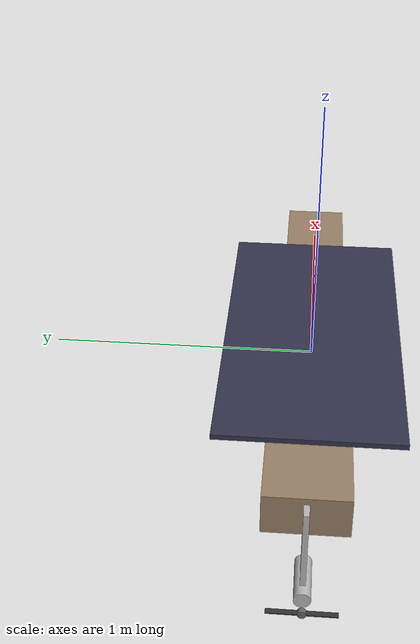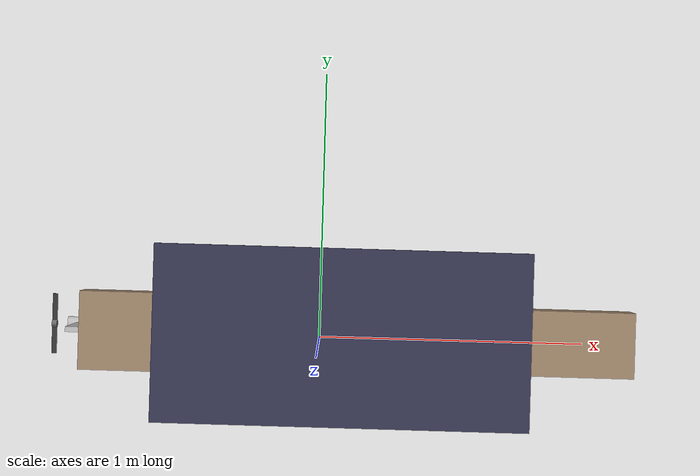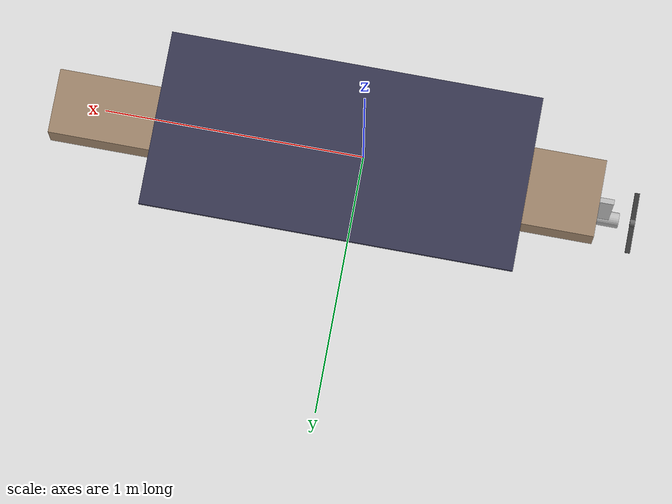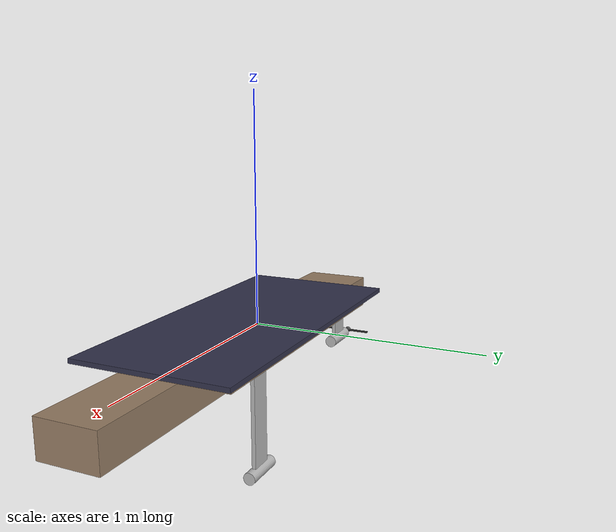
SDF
<?xml version="1.0" encoding="UTF-8"?>
<sdf version='1.9'>
  <model name='warden_vectorthrust'>
    <link name='base_link'>
      <pose relative_to='__model__'>0 0 0.0 0 0 0</pose>
      <inertial>
        <pose>0 0 -0.07 0 0 0</pose> <!-- CG 3cm from hull bottom -->
        <mass>27.73</mass> <!-- 30kg total - 2.27kg keel -->
        <inertia>
          <!-- Box inertia: 1.83m x 0.3m x 0.2m, 27.73kg -->
          <ixx>0.25</ixx>
          <ixy>0.0</ixy>
          <ixz>0.0</ixz>
          <iyy>7.74</iyy>
          <iyz>0.0</iyz>
          <izz>7.77</izz>
        </inertia>
      </inertial>
      <!-- Tapered bow section -->
      <visual name='bow_visual'>
        <pose>0.785 0 -0.05 0 0 0</pose>
        <geometry>
          <box>
            <size>0.83 0.25 0.15</size>
          </box>
        </geometry>
        <material>
          <ambient>0.6 0.5 0.4 1</ambient>
          <diffuse>0.6 0.5 0.4 1</diffuse>
        </material>
      </visual>

      <!-- Main hull body -->
      <visual name='hull_visual'>
        <pose>-0.215 0 -0.05 0 0 0</pose>
        <geometry>
          <box>
            <size>1.4 0.3 0.15</size>
          </box>
        </geometry>
        <material>
          <ambient>0.6 0.5 0.4 1</ambient>
          <diffuse>0.6 0.5 0.4 1</diffuse>
        </material>
      </visual>

      <!-- Solar panel deck on top -->
      <visual name='solar_panel_visual'>
        <pose>0.085 0 0.04 0 0 0</pose>
        <geometry>
          <box>
            <size>1.44 0.68 0.02</size>
          </box>
        </geometry>
        <material>
          <ambient>0.2 0.2 0.3 1</ambient>
          <diffuse>0.2 0.2 0.3 1</diffuse>
        </material>
      </visual>

      <!-- Collision geometry for buoyancy -->
      <collision name='hull_collision'>
        <pose>0 0 -0.05 0 0 0</pose>
        <geometry>
          <box>
            <size>1.83 0.3 0.15</size>
          </box>
        </geometry>
      </collision>

      <sensor name="air_pressure_sensor" type="air_pressure">
        <always_on>1</always_on>
        <update_rate>50</update_rate>
        <air_pressure>
          <pressure>
            <noise type="gaussian">
              <mean>0</mean>
              <stddev>3</stddev>
            </noise>
          </pressure>
        </air_pressure>
      </sensor>
      <sensor name="magnetometer_sensor" type="magnetometer">
        <always_on>1</always_on>
        <update_rate>100</update_rate>
        <magnetometer>
          <x>
            <noise type="gaussian">
              <stddev>0.0001</stddev>
            </noise>
          </x>
          <y>
            <noise type="gaussian">
              <stddev>0.0001</stddev>
            </noise>
          </y>
          <z>
            <noise type="gaussian">
              <stddev>0.0001</stddev>
            </noise>
          </z>
        </magnetometer>
      </sensor>
      <sensor name="imu_sensor" type="imu">
        <always_on>1</always_on>
        <update_rate>250</update_rate>
        <imu>
          <angular_velocity>
            <x>
              <noise type="gaussian">
                <mean>0.0</mean>
                <stddev>0.0008726646</stddev>
              </noise>
            </x>
            <y>
              <noise type="gaussian">
                <mean>0.0</mean>
                <stddev>0.0008726646</stddev>
              </noise>
            </y>
            <z>
              <noise type="gaussian">
                <mean>0.0</mean>
                <stddev>0.0008726646</stddev>
              </noise>
            </z>
          </angular_velocity>
          <linear_acceleration>
            <x>
              <noise type="gaussian">
                <mean>0.0</mean>
                <stddev>0.00637</stddev>
              </noise>
            </x>
            <y>
              <noise type="gaussian">
                <mean>0.0</mean>
                <stddev>0.00637</stddev>
              </noise>
            </y>
            <z>
              <noise type="gaussian">
                <mean>0.0</mean>
                <stddev>0.00686</stddev>
              </noise>
            </z>
          </linear_acceleration>
        </imu>
      </sensor>
      <sensor name="navsat_sensor" type="navsat">
        <always_on>1</always_on>
        <update_rate>30</update_rate>
      </sensor>
    </link>

    <!-- Keel fin/foil connecting hull to bulb keel -->
    <link name="keel_fin">
      <pose relative_to="base_link">0 0 -0.4 0 0 0</pose>
      <inertial>
        <mass>0.5</mass>
        <inertia>
          <ixx>0.015</ixx>
          <ixy>0.0</ixy>
          <ixz>0.0</ixz>
          <iyy>0.0005</iyy>
          <iyz>0.0</iyz>
          <izz>0.015</izz>
        </inertia>
      </inertial>
      <visual name='fin_visual'>
        <geometry>
          <box>
            <size>0.11 0.02 0.6</size> <!-- 110mm chord, thin foil, 600mm height -->
          </box>
        </geometry>
      </visual>
    </link>

    <joint name="keel_fin_joint" type="fixed">
      <parent>base_link</parent>
      <child>keel_fin</child>
    </joint>

    <!-- 5 lb bulb keel at 600mm below hull bottom -->
    <link name="keel">
      <pose relative_to="keel_fin">0 0 -0.3 0 1.5708 0</pose>
      <inertial>
        <mass>2.27</mass> <!-- 5 lbs -->
        <inertia>
          <ixx>0.02</ixx>
          <ixy>0.0</ixy>
          <ixz>0.0</ixz>
          <iyy>0.02</iyy>
          <iyz>0.0</iyz>
          <izz>0.001</izz>
        </inertia>
      </inertial>
      <visual name='keel_visual'>
        <geometry>
          <cylinder>
            <radius>0.03</radius> <!-- 3cm radius -->
            <length>0.2</length> <!-- 20cm long -->
          </cylinder>
        </geometry>
      </visual>
    </link>

    <joint name="keel_joint" type="fixed">
      <parent>keel_fin</parent>
      <child>keel</child>
    </joint>

    <!-- Outboard motor assembly (steering + motor pod combined) -->
    <link name="thruster_steering_link">
      <pose relative_to="base_link">-0.915 0 0 0 0 0</pose>
      <inertial>
        <mass>2.0</mass>
        <inertia>
          <ixx>0.05</ixx>
          <iyy>0.05</iyy>
          <izz>0.01</izz>
        </inertia>
      </inertial>
      <visual name='outboard_visual'>
        <pose>0 0 -0.165 0 0 0</pose>
        <geometry>
          <box>
            <size>0.11 0.02 0.33</size>
          </box>
        </geometry>
      </visual>
      <visual name='motor_pod_visual'>
        <pose>0 0 -0.33 0 1.5708 0</pose>
        <geometry>
          <cylinder>
            <radius>0.03</radius>
            <length>0.19</length>
          </cylinder>
        </geometry>
      </visual>
    </link>

    <!-- Propeller at rear of motor assembly -->
    <link name="propeller_link">
      <pose relative_to="propeller_joint">0 0 0 0 0 0</pose>
      <inertial>
        <mass>0.1</mass>
        <inertia>
          <ixx>0.00036</ixx>
          <ixy>0</ixy>
          <iyy>0.00036</iyy>
          <iyz>0</iyz>
          <izz>0.00072</izz>
        </inertia>
      </inertial>
      <visual name='hub'>
        <pose>0 0 0 0 1.570796 0</pose>
        <geometry>
          <cylinder>
            <radius>0.015</radius>
            <length>0.02</length>
          </cylinder>
        </geometry>
        <material>
          <ambient>0.3 0.3 0.3 1</ambient>
          <diffuse>0.4 0.4 0.4 1</diffuse>
        </material>
      </visual>
      <visual name='blade1'>
        <pose>0 0.06 0 0 0 0</pose>
        <geometry>
          <box>
            <size>0.02 0.12 0.005</size>
          </box>
        </geometry>
        <material>
          <ambient>0.1 0.1 0.1 1</ambient>
          <diffuse>0.2 0.2 0.2 1</diffuse>
        </material>
      </visual>
      <visual name='blade2'>
        <pose>0 -0.06 0 0 0 0</pose>
        <geometry>
          <box>
            <size>0.02 0.12 0.005</size>
          </box>
        </geometry>
        <material>
          <ambient>0.1 0.1 0.1 1</ambient>
          <diffuse>0.2 0.2 0.2 1</diffuse>
        </material>
      </visual>
    </link>

    <joint name="thruster_steering_joint" type="revolute">
      <parent>base_link</parent>
      <child>thruster_steering_link</child>
      <axis>
        <xyz>0 0 1</xyz>
        <limit>
          <lower>-0.524</lower>
          <upper>0.524</upper>
        </limit>
        <dynamics>
          <damping>1.0</damping>
        </dynamics>
      </axis>
    </joint>

    <joint name="propeller_joint" type="revolute">
      <pose relative_to="thruster_steering_link">-0.15 0 -0.33 0 0 0</pose>
      <parent>thruster_steering_link</parent>
      <child>propeller_link</child>
      <axis>
        <xyz>1 0 0</xyz>
        <dynamics>
          <damping>0.001</damping>
        </dynamics>
        <limit>
          <lower>-1e+16</lower>
          <upper>1e+16</upper>
        </limit>
      </axis>
    </joint>

    <plugin filename="gz-sim-thruster-system" name="gz::sim::systems::Thruster">
      <namespace>/model/warden_vectorthrust_0</namespace>
      <topic>servo_1</topic>
      <joint_name>propeller_joint</joint_name>
      <use_angvel_cmd>1</use_angvel_cmd>
      <fluid_density>1000</fluid_density>
      <propeller_diameter>0.24</propeller_diameter>
      <thrust_coefficient>5.0</thrust_coefficient>
      <velocity_control>1</velocity_control>
      <max_thrust_cmd>104.72</max_thrust_cmd>
      <min_thrust_cmd>-104.72</min_thrust_cmd>
    </plugin>

    <plugin filename="gz-sim-joint-position-controller-system" name="gz::sim::systems::JointPositionController">
      <joint_name>thruster_steering_joint</joint_name>
      <sub_topic>servo_0</sub_topic>
      <p_gain>50</p_gain>
      <i_gain>5</i_gain>
      <d_gain>1</d_gain>
    </plugin>

    <plugin filename="gz-sim-joint-state-publisher-system" name="gz::sim::systems::JointStatePublisher">
      <joint_name>thruster_steering_joint</joint_name>
      <joint_name>propeller_joint</joint_name>
    </plugin>
    <!-- Hydrodynamics plugin with buoyancy -->
    <plugin
        filename="gz-waves1-hydrodynamics-system"
        name="gz::sim::systems::Hydrodynamics">
        <hydrodynamics>
          <damping_on>1</damping_on>
          <viscous_drag_on>1</viscous_drag_on>
          <pressure_drag_on>1</pressure_drag_on>

          <!-- Linear and Angular Damping -->
          <!-- Linear: ~0.5*Cd*rho*A where A~0.5m² wetted, Cd~1.0 -->
          <cDampL1>50.0</cDampL1>
          <cDampL2>200.0</cDampL2>
          <!-- Angular: scaled by L² for moment arm -->
          <cDampR1>50.0</cDampR1>
          <cDampR2>50.0</cDampR2>

          <!-- 'Pressure' Drag: Cd*A for cross-flow -->
          <!-- Lateral drag much higher than streamwise -->
          <cPDrag1>20.0</cPDrag1>
          <cPDrag2>200.0</cPDrag2>
          <fPDrag>0.4</fPDrag>
          <cSDrag1>20.0</cSDrag1>
          <cSDrag2>200.0</cSDrag2>
          <fSDrag>0.4</fSDrag>
          <vRDrag>1.0</vRDrag>
        </hydrodynamics>
    </plugin>
  </model>
</sdf>
